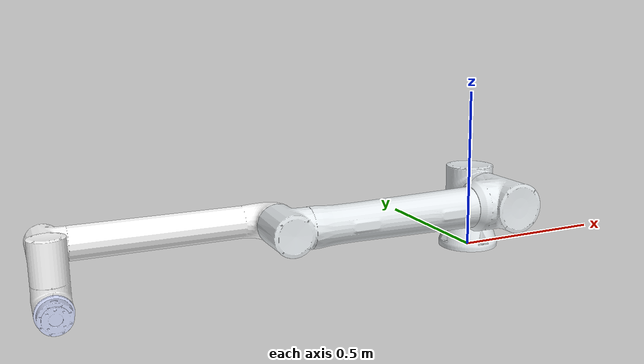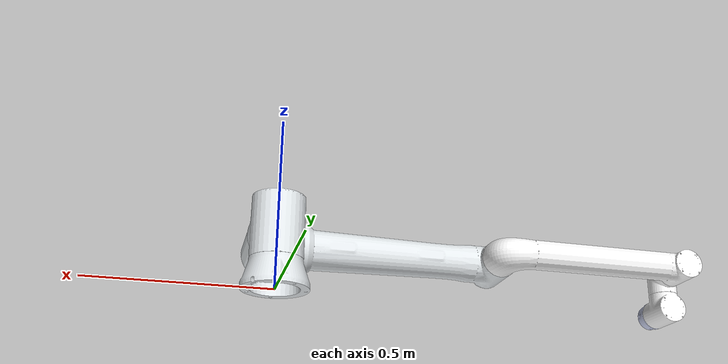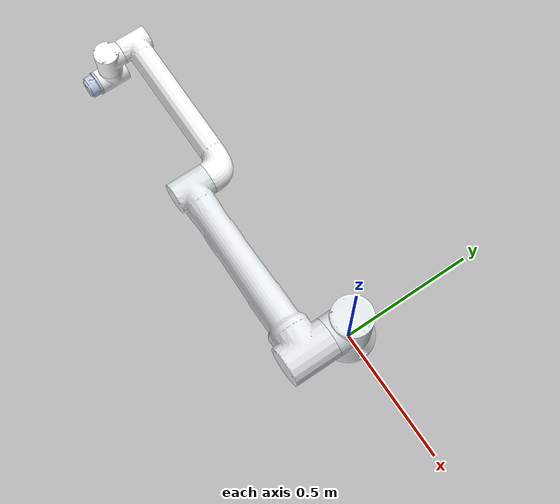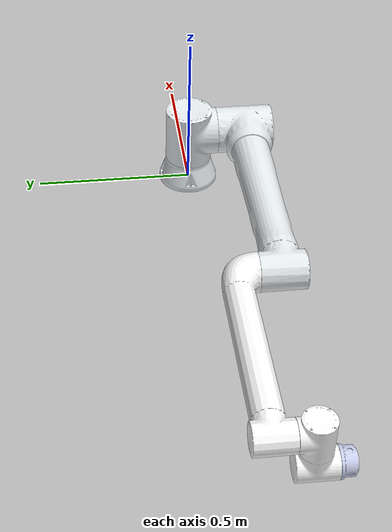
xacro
<?xml version="1.0"?>
<robot xmlns:xacro="http://www.ros.org/wiki/xacro" name="fairino10_v6_robot">
  <xacro:arg name="fairino_file" default="fairino.yaml" />
  <xacro:arg name="hardware_mode" default="real" />

  <!-- Import fairino10_v6_robot urdf file -->
  <xacro:include filename="$(find fairino_description)/urdf/fairino10_v6.urdf" />

  <!-- Import control_xacro -->
  <xacro:include filename="$(find fairino_description)/urdf/fairino.ros2_control.xacro" />

  <xacro:fairino_ros2_control
    name="fairino_ros2_control"
    fairino_file="$(arg fairino_file)"
    hardware_mode="$(arg hardware_mode)"
  />
</robot>

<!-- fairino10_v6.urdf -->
<robot
  name="fairino10_v6_robot">
  <link
    name="base_link">
    <inertial>
      <origin
        xyz="-0.00037778 -0.00035367 0.035825"
        rpy="0 0 0" />
      <mass
        value="0.73775" />
      <inertia
        ixx="0.0026263"
        ixy="1.1085E-05"
        ixz="-8.5601E-06"
        iyy="0.0026258"
        iyz="-7.9868E-06"
        izz="0.0044466" />
    </inertial>
    <visual>
      <origin
        xyz="0 0 0"
        rpy="0 0 0" />
      <geometry>
        <mesh
          filename="package://fairino_description/meshes/fairino10_v6/base_link.STL" />
      </geometry>
      <material
        name="">
        <color
          rgba="0.89804 0.91765 0.92941 1" />
      </material>
    </visual>
    <collision>
      <origin
        xyz="0 0 0"
        rpy="0 0 0" />
      <geometry>
        <mesh
          filename="package://fairino_description/meshes/fairino10_v6/base_link.STL" />
      </geometry>
    </collision>
  </link>
  <link
    name="shoulder_link">
    <inertial>
      <origin
        xyz="-0.0001 -0.02612 0.00404"
        rpy="0 0 0" />
      <mass
        value="11.97" />
      <inertia
        ixx="0.04607471"
        ixy="-0.00001041"
        ixz="-0.00009371"
        iyy="0.03493881"
        iyz="0.00133107"
        izz="0.04467851" />
    </inertial>
    <visual>
      <origin
        xyz="0 0 0"
        rpy="0 0 0" />
      <geometry>
        <mesh
          filename="package://fairino_description/meshes/fairino10_v6/shoulder_link.STL" />
      </geometry>
      <material
        name="">
        <color
          rgba="0.89804 0.91765 0.92941 1" />
      </material>
    </visual>
    <collision>
      <origin
        xyz="0 0 0"
        rpy="0 0 0" />
      <geometry>
        <mesh
          filename="package://fairino_description/meshes/fairino10_v6/shoulder_link.STL" />
      </geometry>
    </collision>
  </link>
  <joint
    name="j1"
    type="revolute">
    <origin
      xyz="0 0 0"
      rpy="0 0 0" />
    <parent
      link="base_link" />
    <child
      link="shoulder_link" />
    <axis
      xyz="0 0 1" />
    <limit
      lower="-3.0543"
      upper="3.0543"
      effort="150"
      velocity="3.15" />
    <calibration
      rising="0"
      falling="0" />
    <dynamics
      damping="0"
      friction="0" />
    <safety_controller
      soft_upper_limit="3.0543261"
      soft_lower_limit="-3.0543261"
      k_position="100.0"
      k_velocity="40.0" />
  </joint>
  <link
    name="upperarm_link">
    <inertial>
      <origin
        xyz="0.48027 0.00001 0.16468"
        rpy="0 0 0" />
      <mass
        value="19.59" />
      <inertia
        ixx="0.0649166"
        ixy="0.00054242"
        ixz="-0.02821532"
        iyy="1.81964752"
        iyz="-0.00005779"
        izz="1.80524518" />
    </inertial>
    <visual>
      <origin
        xyz="0 0 0"
        rpy="0 0 0" />
      <geometry>
        <mesh
          filename="package://fairino_description/meshes/fairino10_v6/upperarm_link.STL" />
      </geometry>
      <material
        name="">
        <color
          rgba="0.89804 0.91765 0.92941 1" />
      </material>
    </visual>
    <collision>
      <origin
        xyz="0 0 0"
        rpy="0 0 0" />
      <geometry>
        <mesh
          filename="package://fairino_description/meshes/fairino10_v6/upperarm_link.STL" />
      </geometry>
    </collision>
  </link>
  <joint
    name="j2"
    type="revolute">
    <origin
      xyz="0 0 0.18"
      rpy="1.5708 0 0" />
    <parent
      link="shoulder_link" />
    <child
      link="upperarm_link" />
    <axis
      xyz="0 0 1" />
    <limit
      lower="-4.6251"
      upper="1.4835"
      effort="150"
      velocity="3.15" />
    <calibration
      rising="0"
      falling="0" />
    <dynamics
      damping="0"
      friction="0" />
    <safety_controller
      soft_upper_limit="3.0543261"
      soft_lower_limit="-3.0543261"
      k_position="100.0"
      k_velocity="40.0" />
  </joint>
  <link
    name="forearm_link">
    <inertial>
      <origin
        xyz="0.21122 0.00011 0.05421"
        rpy="0 0 0" />
      <mass
        value="3.7" />
      <inertia
        ixx="0.00642901"
        ixy="0.00004731"
        ixz="0.00070041"
        iyy="0.20273064"
        iyz="0.00000774"
        izz="0.20206759" />
    </inertial>
    <visual>
      <origin
        xyz="0 0 0"
        rpy="0 0 0" />
      <geometry>
        <mesh
          filename="package://fairino_description/meshes/fairino10_v6/forearm_link.STL" />
      </geometry>
      <material
        name="">
        <color
          rgba="1 1 1 1" />
      </material>
    </visual>
    <collision>
      <origin
        xyz="0 0 0"
        rpy="0 0 0" />
      <geometry>
        <mesh
          filename="package://fairino_description/meshes/fairino10_v6/forearm_link.STL" />
      </geometry>
    </collision>
  </link>
  <joint
    name="j3"
    type="revolute">
    <origin
      xyz="-0.7 0 0"
      rpy="0 0 0" />
    <parent
      link="upperarm_link" />
    <child
      link="forearm_link" />
    <axis
      xyz="0 0 1" />
    <limit
      lower="-2.8274"
      upper="2.8274"
      effort="150"
      velocity="3.15" />
    <calibration
      rising="0"
      falling="0" />
    <dynamics
      damping="0"
      friction="0" />
    <safety_controller
      soft_upper_limit="3.0543261"
      soft_lower_limit="-3.0543261"
      k_position="100.0"
      k_velocity="40.0" />
  </joint>
  <link
    name="wrist1_link">
    <inertial>
      <origin
        xyz="0.00012 -0.003 0.01218"
        rpy="0 0 0" />
      <mass
        value="1.69" />
      <inertia
        ixx="0.00248058"
        ixy="0.00001495"
        ixz="0.00002165"
        iyy="0.00239729"
        iyz="-0.00007228"
        izz="0.00180628" />
    </inertial>
    <visual>
      <origin
        xyz="0 0 0"
        rpy="0 0 0" />
      <geometry>
        <mesh
          filename="package://fairino_description/meshes/fairino10_v6/wrist1_link.STL" />
      </geometry>
      <material
        name="">
        <color
          rgba="1 1 1 1" />
      </material>
    </visual>
    <collision>
      <origin
        xyz="0 0 0"
        rpy="0 0 0" />
      <geometry>
        <mesh
          filename="package://fairino_description/meshes/fairino10_v6/wrist1_link.STL" />
      </geometry>
    </collision>
  </link>
  <joint
    name="j4"
    type="revolute">
    <origin
      xyz="-0.586 0 0"
      rpy="0 0 0" />
    <parent
      link="forearm_link" />
    <child
      link="wrist1_link" />
    <axis
      xyz="0 0 1" />
    <limit
      lower="-4.6251"
      upper="1.4835"
      effort="28"
      velocity="3.2" />
    <calibration
      rising="0"
      falling="0" />
    <dynamics
      damping="0"
      friction="0" />
    <safety_controller
      soft_upper_limit="3.0543261"
      soft_lower_limit="-3.0543261"
      k_position="100.0"
      k_velocity="40.0" />
  </joint>
  <link
    name="wrist2_link">
    <inertial>
      <origin
        xyz="-0.00012 0.003 0.01218"
        rpy="0 0 0" />
      <mass
        value="1.69" />
      <inertia
        ixx="0.00248058"
        ixy="0.00001495"
        ixz="-0.00002165"
        iyy="0.00239729"
        iyz="0.00007228"
        izz="0.00180628" />
    </inertial>
    <visual>
      <origin
        xyz="0 0 0"
        rpy="0 0 0" />
      <geometry>
        <mesh
          filename="package://fairino_description/meshes/fairino10_v6/wrist2_link.STL" />
      </geometry>
      <material
        name="">
        <color
          rgba="1 1 1 1" />
      </material>
    </visual>
    <collision>
      <origin
        xyz="0 0 0"
        rpy="0 0 0" />
      <geometry>
        <mesh
          filename="package://fairino_description/meshes/fairino10_v6/wrist2_link.STL" />
      </geometry>
    </collision>
  </link>
  <joint
    name="j5"
    type="revolute">
    <origin
      xyz="0 0 0.159"
      rpy="1.5708 0 0" />
    <parent
      link="wrist1_link" />
    <child
      link="wrist2_link" />
    <axis
      xyz="0 0 1" />
    <limit
      lower="-3.0543"
      upper="3.0543"
      effort="28"
      velocity="3.2" />
    <calibration
      rising="0"
      falling="0" />
    <dynamics
      damping="0"
      friction="0" />
    <safety_controller
      soft_upper_limit="3.0543261"
      soft_lower_limit="-3.0543261"
      k_position="100.0"
      k_velocity="40.0" />
  </joint>
  <link
    name="wrist3_link">
    <inertial>
      <origin
        xyz="0.00124 0.00085 -0.02034"
        rpy="0 0 0" />
      <mass
        value="0.35" />
      <inertia
        ixx="0.00023661"
        ixy="-0.00000085"
        ixz="0.00000092"
        iyy="0.00023501"
        iyz="-0.00000154"
        izz="0.00036972" />
    </inertial>
    <visual>
      <origin
        xyz="0 0 0"
        rpy="0 0 0" />
      <geometry>
        <mesh
          filename="package://fairino_description/meshes/fairino10_v6/wrist3_link.STL" />
      </geometry>
      <material
        name="">
        <color
          rgba="0.79216 0.81961 0.93333 1" />
      </material>
    </visual>
    <collision>
      <origin
        xyz="0 0 0"
        rpy="0 0 0" />
      <geometry>
        <mesh
          filename="package://fairino_description/meshes/fairino10_v6/wrist3_link.STL" />
      </geometry>
    </collision>
  </link>
  <joint
    name="j6"
    type="revolute">
    <origin
      xyz="0 0 0.114"
      rpy="-1.5708 0 0" />
    <parent
      link="wrist2_link" />
    <child
      link="wrist3_link" />
    <axis
      xyz="0 0 1" />
    <limit
      lower="-3.0543"
      upper="3.0543"
      effort="28"
      velocity="3.2" />
    <calibration
      rising="0"
      falling="0" />
    <dynamics
      damping="0"
      friction="0" />
    <safety_controller
      soft_upper_limit="3.0543261"
      soft_lower_limit="-3.0543261"
      k_position="100.0"
      k_velocity="40.0" />
  </joint>
</robot>
